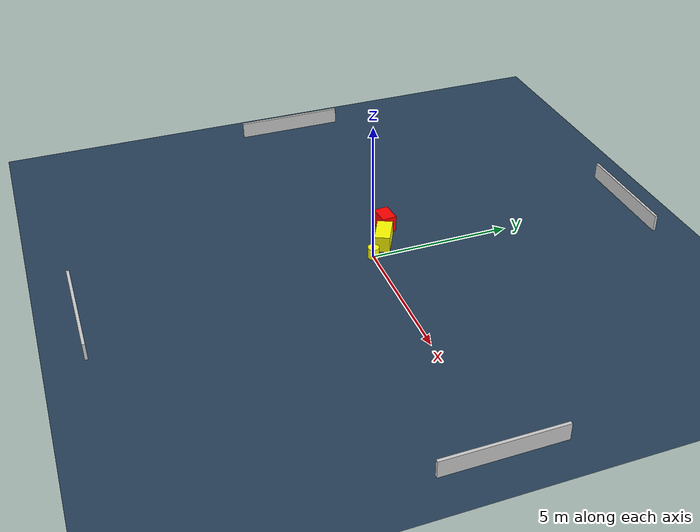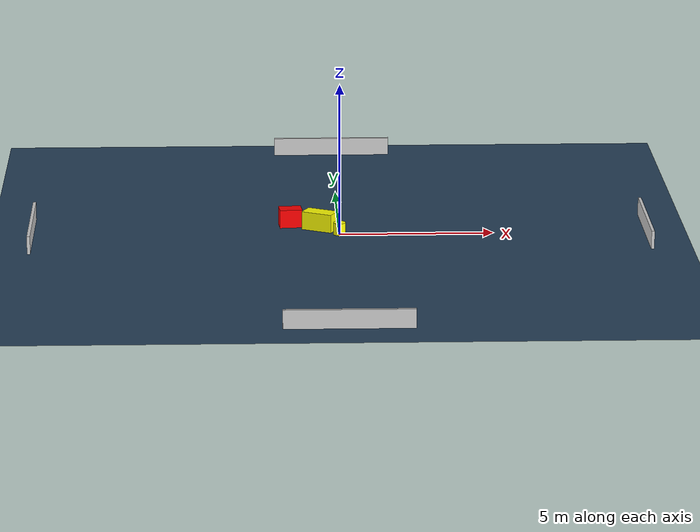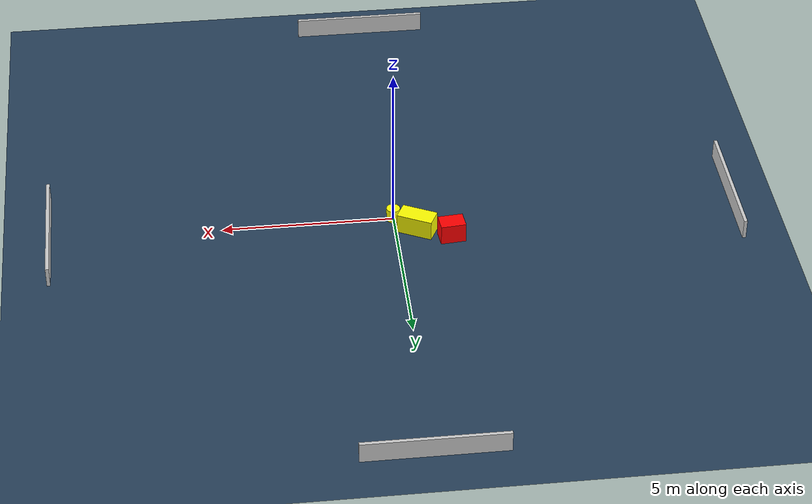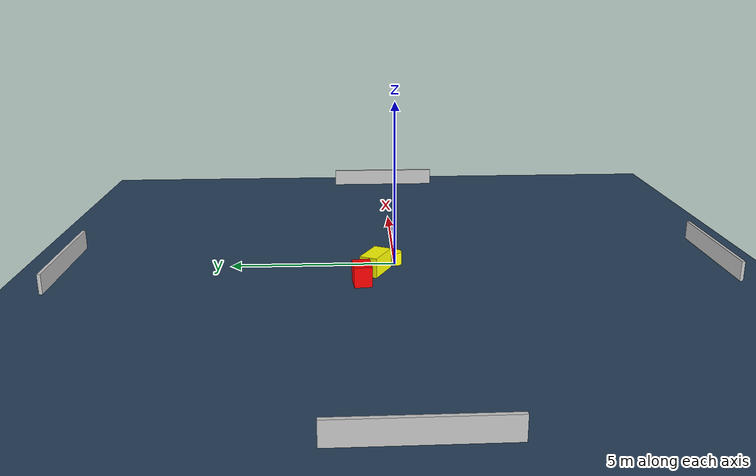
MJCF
<?xml version="1.0" ?>
<mujoco model="generated_environment">
  <option timestep="0.01" integrator="RK4" cone="elliptic"/>
  <default>
    <geom density="1"/>
  </default>
  <asset>
    <texture builtin="gradient" height="3072" name="skybox" rgb1="0.3 0.5 0.7" rgb2="0 0 0" type="skybox" width="512"/>
    <texture builtin="checker" height="300" name="groundplane" rgb1="0.2 0.3 0.4" rgb2="0.1 0.2 0.3" type="2d" width="300"/>
    <material name="groundplane" reflectance="0.2" texrepeat="5 5" texture="groundplane"/>
  </asset>
  <worldbody>
    <light dir="0 0 -1" directional="true" pos="0 0 1.5"/>
    <geom condim="3" friction="0.5 0.005 0.001" material="groundplane" name="floor" pos="0 0 0" size="0 0 0.05" type="plane"/>
    <body name="walls">
      <geom name="wall_1" condim="4" pos="-10.0 0.0 0.3" rgba="0.800000011920929 0.800000011920929 0.800000011920929 1.0" size="0.05 2.0 0.3" type="box"/>
      <geom name="wall_2" condim="4" pos="10.0 0.0 0.3" rgba="0.800000011920929 0.800000011920929 0.800000011920929 1.0" size="0.05 2.0 0.3" type="box"/>
      <geom name="wall_3" condim="4" pos="0.0 -10.0 0.3" rgba="0.800000011920929 0.800000011920929 0.800000011920929 1.0" size="2.0 0.05 0.3" type="box"/>
      <geom name="wall_4" condim="4" pos="0.0 10.0 0.3" rgba="0.800000011920929 0.800000011920929 0.800000011920929 1.0" size="2.0 0.05 0.3" type="box"/>
    </body>
    <body name="robot">
      <joint name="joint_x" type="slide" pos="0 0 0" axis="1 0 0"/>
      <joint name="joint_y" type="slide" pos="0 0 0" axis="0 1 0"/>
      <geom name="robot" type="cylinder" pos="0.0 0.0 0.2" size="0.2 0.2 0.0" mass="5.0" friction="1.0 0.005 0.0001" condim="4" rgba="1.0 1.0 0.0 1.0"/>
    </body>
    <body name="obstacle_1_movable">
      <geom name="obstacle_1_movable" condim="4" pos="-0.6305011042857085 0.6161101526012461 0.3" euler="0 0 333.15936051354294" friction="0.0 0.005 0.001" rgba="1.0 1.0 0.0 1.0" size="0.5273037809694763 0.2713697281703511 0.3" type="box" mass="0.1"/>
      <joint type="free"/>
    </body>
    <body name="obstacle_2_static">
      <geom name="obstacle_2_static" condim="4" pos="-1.5857955609320735 1.0379515333138818 0.3" euler="0 0 5.326158879776015" friction="0.0 0.005 0.001" rgba="1.0 0.0 0.0 1.0" size="0.3663886416849491 0.2617060568519725 0.3" type="box"/>
    </body>
  </worldbody>
  <actuator>
    <motor name="actuator_x" joint="joint_x" gear="1" ctrlrange="-1 1"/>
    <motor name="actuator_y" joint="joint_y" gear="1" ctrlrange="-1 1"/>
  </actuator>
</mujoco>
